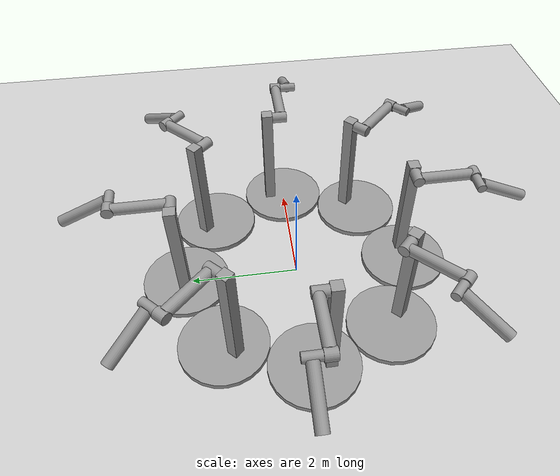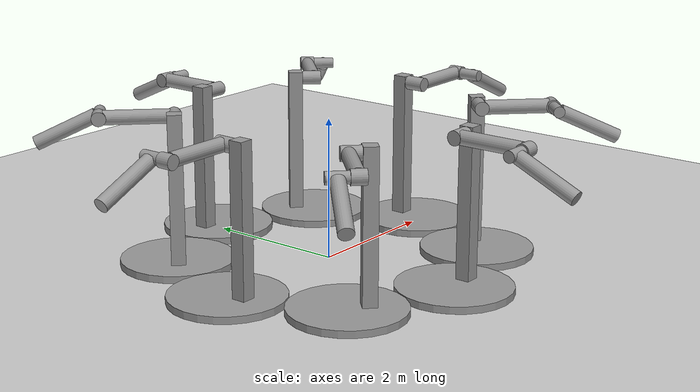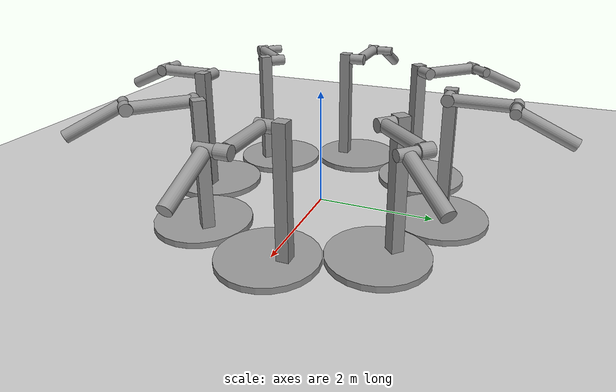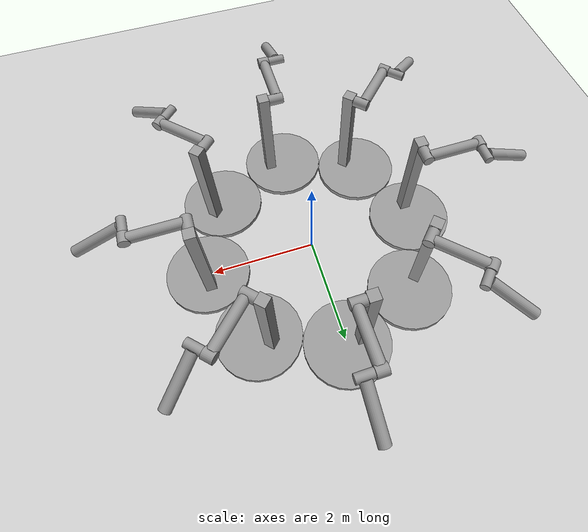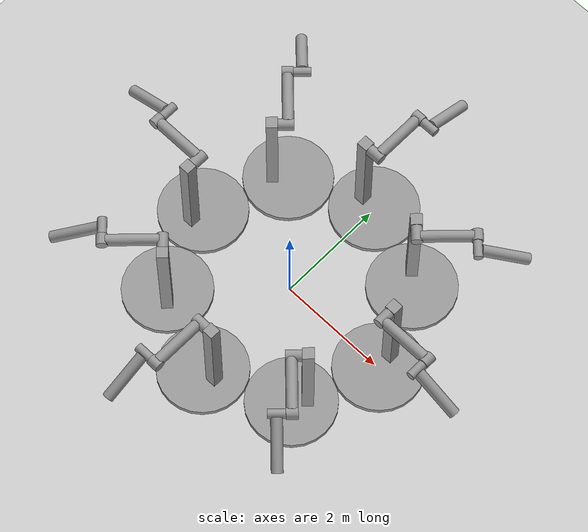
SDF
<sdf version="1.3">
 <world name="default">
  <physics type="simbody">
   <gravity>0.000000 0.000000 -9.800000</gravity>
   <update_rate>1000.000000</update_rate>
   <ode>
    <solver><dt>0.005000</dt><type>quick</type><iters>50</iters><sor>1.300000</sor></solver>
    <constraints>
     <cfm>0.000000</cfm>
     <erp>0.200000</erp>
     <contact_max_correcting_vel>100.000000</contact_max_correcting_vel>
     <contact_surface_layer>0.001000</contact_surface_layer>
    </constraints>
   </ode>
   <simbody><dt>0.005000</dt></simbody>
  </physics>
  <light name="sun" type="directional">
   <pose>0.000000 0.000000 10.000000 0.000000 0.000000 0.000000</pose>
   <diffuse>0.800000 0.800000 0.800000 1.000000</diffuse>
   <specular>0.100000 0.100000 0.100000 1.000000</specular>
   <attenuation>
    <range>1000.000000</range>
    <constant>0.900000</constant>
    <linear>0.010000</linear>
    <quadratic>0.001000</quadratic>
   </attenuation>
   <direction>-0.500000 0.500000 -1.000000</direction>
  </light>
  <model name="ground_plane">
   <static>1</static>
   <link name="link">
    <collision name="collision">
     <pose>0 0 1.75 0 0 0</pose>
     <geometry><sphere><radius>1.5</radius></sphere></geometry>
     <surface><friction><ode><mu>100.000000</mu><mu2>50.000000</mu2></ode></friction></surface>
    </collision>
    <collision name="collision">
     <geometry>
      <plane><normal>0.000000 0.000000 1.000000</normal><size>100.000000 100.000000</size></plane>
     </geometry>
     <surface><friction><ode><mu>100.000000</mu><mu2>50.000000</mu2></ode></friction></surface>
    </collision>
    <visual name="visual">
     <cast_shadows>0</cast_shadows>
     <geometry>
      <plane><normal>0.000000 0.000000 1.000000</normal><size>100.000000 100.000000</size></plane>
     </geometry>
     <material>
      <script><uri>file://media/materials/scripts/gazebo.material</uri><name>Gazebo/Grey</name></script>
     </material>
    </visual>
    <velocity_decay><linear>0.000000</linear><angular>0.000000</angular></velocity_decay>
   </link>
  </model>
  <model name="pendulum_0deg">
   <link name="base">
    <inertial>
     <mass>100.000000</mass>
     <inertia>
      <ixx>1.000000</ixx>
      <ixy>0.000000</ixy>
      <ixz>0.000000</ixz>
      <iyy>1.000000</iyy>
      <iyz>0.000000</iyz>
      <izz>1.000000</izz>
     </inertia>
    </inertial>
    <visual name="vis_plate_on_ground">
     <pose>0.000000 0.000000 0.050000 0.000000 0.000000 0.000000</pose>
     <geometry><cylinder><radius>0.800000</radius><length>0.100000</length></cylinder></geometry>
     <material>
      <script><uri>file://media/materials/scripts/gazebo.material</uri><name>Gazebo/Grey</name></script>
     </material>
    </visual>
    <visual name="vis_pole">
     <pose>-0.275000 0.000000 1.100000 0.000000 0.000000 0.000000</pose>
     <geometry><box><size>0.200000 0.200000 2.200000</size></box></geometry>
     <material>
      <script><uri>file://media/materials/scripts/gazebo.material</uri><name>Gazebo/Grey</name></script>
     </material>
    </visual>
    <collision name="col_plate_on_ground">
     <pose>0.000000 0.000000 0.050000 0.000000 0.000000 0.000000</pose>
     <geometry><cylinder><radius>0.800000</radius><length>0.100000</length></cylinder></geometry>
    </collision>
    <collision name="col_pole">
     <pose>-0.275000 0.000000 1.100000 0.000000 0.000000 0.000000</pose>
     <geometry><box><size>0.200000 0.200000 2.200000</size></box></geometry>
    </collision>
    <velocity_decay><linear>0.000000</linear><angular>0.000000</angular></velocity_decay>
   </link>
   <link name="upper_link">
    <pose>0.000000 0.000000 2.100000 -1.570800 0.000000 0.000000</pose>
    <inertial>
     <pose>0.000000 0.000000 0.500000 0.000000 0.000000 0.000000</pose>
     <inertia>
      <ixx>1.000000</ixx>
      <ixy>0.000000</ixy>
      <ixz>0.000000</ixz>
      <iyy>1.000000</iyy>
      <iyz>0.000000</iyz>
      <izz>1.000000</izz>
     </inertia>
     <mass>1.000000</mass>
    </inertial>
    <visual name="vis_upper_joint">
     <pose>-0.050000 0.000000 0.000000 -3.141592 1.570793 -3.141592</pose>
     <geometry><cylinder><radius>0.100000</radius><length>0.300000</length></cylinder></geometry>
     <material>
      <script><uri>file://media/materials/scripts/gazebo.material</uri><name>Gazebo/Grey</name></script>
     </material>
    </visual>
    <visual name="vis_lower_joint">
     <pose>0.000000 0.000000 1.000000 -3.141592 1.570793 -3.141592</pose>
     <geometry><cylinder><radius>0.100000</radius><length>0.200000</length></cylinder></geometry>
     <material>
      <script><uri>file://media/materials/scripts/gazebo.material</uri><name>Gazebo/Grey</name></script>
     </material>
    </visual>
    <visual name="vis_cylinder">
     <pose>0.000000 0.000000 0.500000 0.000000 0.000000 0.000000</pose>
     <geometry><cylinder><radius>0.100000</radius><length>0.900000</length></cylinder></geometry>
     <material>
      <script><uri>file://media/materials/scripts/gazebo.material</uri><name>Gazebo/Grey</name></script>
     </material>
    </visual>
    <collision name="col_upper_joint">
     <pose>-0.050000 0.000000 0.000000 -3.141592 1.570793 -3.141592</pose>
     <geometry><cylinder><radius>0.100000</radius><length>0.300000</length></cylinder></geometry>
    </collision>
    <collision name="col_lower_joint">
     <pose>0.000000 0.000000 1.000000 -3.141592 1.570793 -3.141592</pose>
     <geometry><cylinder><radius>0.100000</radius><length>0.200000</length></cylinder></geometry>
    </collision>
    <collision name="col_cylinder">
     <pose>0.000000 0.000000 0.500000 0.000000 0.000000 0.000000</pose>
     <geometry><cylinder><radius>0.100000</radius><length>0.900000</length></cylinder></geometry>
    </collision>
    <velocity_decay><linear>0.000000</linear><angular>0.000000</angular></velocity_decay>
   </link>
   <link name="lower_link">
    <pose>0.250000 1.000000 2.100000 -2.000000 0.000000 0.000000</pose>
    <inertial>
     <pose>0.000000 0.000000 0.500000 0.000000 0.000000 0.000000</pose>
     <inertia>
      <ixx>1.000000</ixx>
      <ixy>0.000000</ixy>
      <ixz>0.000000</ixz>
      <iyy>1.000000</iyy>
      <iyz>0.000000</iyz>
      <izz>1.000000</izz>
     </inertia>
     <mass>1.000000</mass>
    </inertial>
    <visual name="vis_lower_joint">
     <pose>0.000000 0.000000 0.000000 -3.141592 1.570793 -3.141592</pose>
     <geometry><cylinder><radius>0.080000</radius><length>0.300000</length></cylinder></geometry>
     <material>
      <script><uri>file://media/materials/scripts/gazebo.material</uri><name>Gazebo/Grey</name></script>
     </material>
    </visual>
    <visual name="vis_cylinder">
     <pose>0.000000 0.000000 0.500000 0.000000 0.000000 0.000000</pose>
     <geometry><cylinder><radius>0.100000</radius><length>0.900000</length></cylinder></geometry>
     <material>
      <script><uri>file://media/materials/scripts/gazebo.material</uri><name>Gazebo/Grey</name></script>
     </material>
    </visual>
    <collision name="col_lower_joint">
     <pose>0.000000 0.000000 0.000000 -3.141592 1.570793 -3.141592</pose>
     <geometry><cylinder><radius>0.080000</radius><length>0.300000</length></cylinder></geometry>
    </collision>
    <collision name="col_cylinder">
     <pose>0.000000 0.000000 0.500000 0.000000 0.000000 0.000000</pose>
     <geometry><cylinder><radius>0.100000</radius><length>0.900000</length></cylinder></geometry>
    </collision>
    <velocity_decay><linear>0.000000</linear><angular>0.000000</angular></velocity_decay>
   </link>
   <joint name="upper_joint" type="revolute">
    <parent>base</parent>
    <child>upper_link</child>
    <axis>
     <xyz>1.000000 0.000000 0.000000</xyz>
     <limit><lower>-10000000000000000.000000</lower><upper>10000000000000000.000000</upper></limit>
    </axis>
   </joint>
   <joint name="lower_joint" type="revolute">
    <parent>upper_link</parent>
    <child>lower_link</child>
    <axis>
     <xyz>1.000000 0.000000 0.000000</xyz>
     <limit><lower>-10000000000000000.000000</lower><upper>10000000000000000.000000</upper></limit>
    </axis>
   </joint>
   <pose>0.000000 2.100000 0.000000 0.000000 0.000000 0.000000</pose>
   <static>0</static>
  </model>
  <model name="pendulum_180deg">
   <link name="base">
    <inertial>
     <mass>100.000000</mass>
     <inertia>
      <ixx>1.000000</ixx>
      <ixy>0.000000</ixy>
      <ixz>0.000000</ixz>
      <iyy>1.000000</iyy>
      <iyz>0.000000</iyz>
      <izz>1.000000</izz>
     </inertia>
    </inertial>
    <visual name="vis_plate_on_ground">
     <pose>0.000000 0.000000 0.050000 0.000000 0.000000 0.000000</pose>
     <geometry><cylinder><radius>0.800000</radius><length>0.100000</length></cylinder></geometry>
     <material>
      <script><uri>file://media/materials/scripts/gazebo.material</uri><name>Gazebo/Grey</name></script>
     </material>
    </visual>
    <visual name="vis_pole">
     <pose>-0.275000 0.000000 1.100000 0.000000 0.000000 0.000000</pose>
     <geometry><box><size>0.200000 0.200000 2.200000</size></box></geometry>
     <material>
      <script><uri>file://media/materials/scripts/gazebo.material</uri><name>Gazebo/Grey</name></script>
     </material>
    </visual>
    <collision name="col_plate_on_ground">
     <pose>0.000000 0.000000 0.050000 0.000000 0.000000 0.000000</pose>
     <geometry><cylinder><radius>0.800000</radius><length>0.100000</length></cylinder></geometry>
    </collision>
    <collision name="col_pole">
     <pose>-0.275000 0.000000 1.100000 0.000000 0.000000 0.000000</pose>
     <geometry><box><size>0.200000 0.200000 2.200000</size></box></geometry>
    </collision>
    <velocity_decay><linear>0.000000</linear><angular>0.000000</angular></velocity_decay>
   </link>
   <link name="upper_link">
    <pose>0.000000 0.000000 2.100000 -1.570800 0.000000 0.000000</pose>
    <inertial>
     <pose>0.000000 0.000000 0.500000 0.000000 0.000000 0.000000</pose>
     <inertia>
      <ixx>1.000000</ixx>
      <ixy>0.000000</ixy>
      <ixz>0.000000</ixz>
      <iyy>1.000000</iyy>
      <iyz>0.000000</iyz>
      <izz>1.000000</izz>
     </inertia>
     <mass>1.000000</mass>
    </inertial>
    <visual name="vis_upper_joint">
     <pose>-0.050000 0.000000 0.000000 -3.141592 1.570793 -3.141592</pose>
     <geometry><cylinder><radius>0.100000</radius><length>0.300000</length></cylinder></geometry>
     <material>
      <script><uri>file://media/materials/scripts/gazebo.material</uri><name>Gazebo/Grey</name></script>
     </material>
    </visual>
    <visual name="vis_lower_joint">
     <pose>0.000000 0.000000 1.000000 -3.141592 1.570793 -3.141592</pose>
     <geometry><cylinder><radius>0.100000</radius><length>0.200000</length></cylinder></geometry>
     <material>
      <script><uri>file://media/materials/scripts/gazebo.material</uri><name>Gazebo/Grey</name></script>
     </material>
    </visual>
    <visual name="vis_cylinder">
     <pose>0.000000 0.000000 0.500000 0.000000 0.000000 0.000000</pose>
     <geometry><cylinder><radius>0.100000</radius><length>0.900000</length></cylinder></geometry>
     <material>
      <script><uri>file://media/materials/scripts/gazebo.material</uri><name>Gazebo/Grey</name></script>
     </material>
    </visual>
    <collision name="col_upper_joint">
     <pose>-0.050000 0.000000 0.000000 -3.141592 1.570793 -3.141592</pose>
     <geometry><cylinder><radius>0.100000</radius><length>0.300000</length></cylinder></geometry>
    </collision>
    <collision name="col_lower_joint">
     <pose>0.000000 0.000000 1.000000 -3.141592 1.570793 -3.141592</pose>
     <geometry><cylinder><radius>0.100000</radius><length>0.200000</length></cylinder></geometry>
    </collision>
    <collision name="col_cylinder">
     <pose>0.000000 0.000000 0.500000 0.000000 0.000000 0.000000</pose>
     <geometry><cylinder><radius>0.100000</radius><length>0.900000</length></cylinder></geometry>
    </collision>
    <velocity_decay><linear>0.000000</linear><angular>0.000000</angular></velocity_decay>
   </link>
   <link name="lower_link">
    <pose>0.250000 1.000000 2.100000 -2.000000 0.000000 0.000000</pose>
    <inertial>
     <pose>0.000000 0.000000 0.500000 0.000000 0.000000 0.000000</pose>
     <inertia>
      <ixx>1.000000</ixx>
      <ixy>0.000000</ixy>
      <ixz>0.000000</ixz>
      <iyy>1.000000</iyy>
      <iyz>0.000000</iyz>
      <izz>1.000000</izz>
     </inertia>
     <mass>1.000000</mass>
    </inertial>
    <visual name="vis_lower_joint">
     <pose>0.000000 0.000000 0.000000 -3.141592 1.570793 -3.141592</pose>
     <geometry><cylinder><radius>0.080000</radius><length>0.300000</length></cylinder></geometry>
     <material>
      <script><uri>file://media/materials/scripts/gazebo.material</uri><name>Gazebo/Grey</name></script>
     </material>
    </visual>
    <visual name="vis_cylinder">
     <pose>0.000000 0.000000 0.500000 0.000000 0.000000 0.000000</pose>
     <geometry><cylinder><radius>0.100000</radius><length>0.900000</length></cylinder></geometry>
     <material>
      <script><uri>file://media/materials/scripts/gazebo.material</uri><name>Gazebo/Grey</name></script>
     </material>
    </visual>
    <collision name="col_lower_joint">
     <pose>0.000000 0.000000 0.000000 -3.141592 1.570793 -3.141592</pose>
     <geometry><cylinder><radius>0.080000</radius><length>0.300000</length></cylinder></geometry>
    </collision>
    <collision name="col_cylinder">
     <pose>0.000000 0.000000 0.500000 0.000000 0.000000 0.000000</pose>
     <geometry><cylinder><radius>0.100000</radius><length>0.900000</length></cylinder></geometry>
    </collision>
    <velocity_decay><linear>0.000000</linear><angular>0.000000</angular></velocity_decay>
   </link>
   <joint name="upper_joint" type="revolute">
    <parent>base</parent>
    <child>upper_link</child>
    <axis>
     <xyz>1.000000 0.000000 0.000000</xyz>
     <limit><lower>-10000000000000000.000000</lower><upper>10000000000000000.000000</upper></limit>
    </axis>
   </joint>
   <joint name="lower_joint" type="revolute">
    <parent>upper_link</parent>
    <child>lower_link</child>
    <axis>
     <xyz>1.000000 0.000000 0.000000</xyz>
     <limit><lower>-10000000000000000.000000</lower><upper>10000000000000000.000000</upper></limit>
    </axis>
   </joint>
   <pose>0.000000 -2.100000 0.000000 0.000000 0.000000 -3.141585</pose>
   <static>0</static>
  </model>
  <model name="pendulum_90deg">
   <link name="base">
    <inertial>
     <mass>100.000000</mass>
     <inertia>
      <ixx>1.000000</ixx>
      <ixy>0.000000</ixy>
      <ixz>0.000000</ixz>
      <iyy>1.000000</iyy>
      <iyz>0.000000</iyz>
      <izz>1.000000</izz>
     </inertia>
    </inertial>
    <visual name="vis_plate_on_ground">
     <pose>0.000000 0.000000 0.050000 0.000000 0.000000 0.000000</pose>
     <geometry><cylinder><radius>0.800000</radius><length>0.100000</length></cylinder></geometry>
     <material>
      <script><uri>file://media/materials/scripts/gazebo.material</uri><name>Gazebo/Grey</name></script>
     </material>
    </visual>
    <visual name="vis_pole">
     <pose>-0.275000 0.000000 1.100000 0.000000 0.000000 0.000000</pose>
     <geometry><box><size>0.200000 0.200000 2.200000</size></box></geometry>
     <material>
      <script><uri>file://media/materials/scripts/gazebo.material</uri><name>Gazebo/Grey</name></script>
     </material>
    </visual>
    <collision name="col_plate_on_ground">
     <pose>0.000000 0.000000 0.050000 0.000000 0.000000 0.000000</pose>
     <geometry><cylinder><radius>0.800000</radius><length>0.100000</length></cylinder></geometry>
    </collision>
    <collision name="col_pole">
     <pose>-0.275000 0.000000 1.100000 0.000000 0.000000 0.000000</pose>
     <geometry><box><size>0.200000 0.200000 2.200000</size></box></geometry>
    </collision>
    <velocity_decay><linear>0.000000</linear><angular>0.000000</angular></velocity_decay>
   </link>
   <link name="upper_link">
    <pose>0.000000 0.000000 2.100000 -1.570800 0.000000 0.000000</pose>
    <inertial>
     <pose>0.000000 0.000000 0.500000 0.000000 0.000000 0.000000</pose>
     <inertia>
      <ixx>1.000000</ixx>
      <ixy>0.000000</ixy>
      <ixz>0.000000</ixz>
      <iyy>1.000000</iyy>
      <iyz>0.000000</iyz>
      <izz>1.000000</izz>
     </inertia>
     <mass>1.000000</mass>
    </inertial>
    <visual name="vis_upper_joint">
     <pose>-0.050000 0.000000 0.000000 -3.141592 1.570793 -3.141592</pose>
     <geometry><cylinder><radius>0.100000</radius><length>0.300000</length></cylinder></geometry>
     <material>
      <script><uri>file://media/materials/scripts/gazebo.material</uri><name>Gazebo/Grey</name></script>
     </material>
    </visual>
    <visual name="vis_lower_joint">
     <pose>0.000000 0.000000 1.000000 -3.141592 1.570793 -3.141592</pose>
     <geometry><cylinder><radius>0.100000</radius><length>0.200000</length></cylinder></geometry>
     <material>
      <script><uri>file://media/materials/scripts/gazebo.material</uri><name>Gazebo/Grey</name></script>
     </material>
    </visual>
    <visual name="vis_cylinder">
     <pose>0.000000 0.000000 0.500000 0.000000 0.000000 0.000000</pose>
     <geometry><cylinder><radius>0.100000</radius><length>0.900000</length></cylinder></geometry>
     <material>
      <script><uri>file://media/materials/scripts/gazebo.material</uri><name>Gazebo/Grey</name></script>
     </material>
    </visual>
    <collision name="col_upper_joint">
     <pose>-0.050000 0.000000 0.000000 -3.141592 1.570793 -3.141592</pose>
     <geometry><cylinder><radius>0.100000</radius><length>0.300000</length></cylinder></geometry>
    </collision>
    <collision name="col_lower_joint">
     <pose>0.000000 0.000000 1.000000 -3.141592 1.570793 -3.141592</pose>
     <geometry><cylinder><radius>0.100000</radius><length>0.200000</length></cylinder></geometry>
    </collision>
    <collision name="col_cylinder">
     <pose>0.000000 0.000000 0.500000 0.000000 0.000000 0.000000</pose>
     <geometry><cylinder><radius>0.100000</radius><length>0.900000</length></cylinder></geometry>
    </collision>
    <velocity_decay><linear>0.000000</linear><angular>0.000000</angular></velocity_decay>
   </link>
   <link name="lower_link">
    <pose>0.250000 1.000000 2.100000 -2.000000 0.000000 0.000000</pose>
    <inertial>
     <pose>0.000000 0.000000 0.500000 0.000000 0.000000 0.000000</pose>
     <inertia>
      <ixx>1.000000</ixx>
      <ixy>0.000000</ixy>
      <ixz>0.000000</ixz>
      <iyy>1.000000</iyy>
      <iyz>0.000000</iyz>
      <izz>1.000000</izz>
     </inertia>
     <mass>1.000000</mass>
    </inertial>
    <visual name="vis_lower_joint">
     <pose>0.000000 0.000000 0.000000 -3.141592 1.570793 -3.141592</pose>
     <geometry><cylinder><radius>0.080000</radius><length>0.300000</length></cylinder></geometry>
     <material>
      <script><uri>file://media/materials/scripts/gazebo.material</uri><name>Gazebo/Grey</name></script>
     </material>
    </visual>
    <visual name="vis_cylinder">
     <pose>0.000000 0.000000 0.500000 0.000000 0.000000 0.000000</pose>
     <geometry><cylinder><radius>0.100000</radius><length>0.900000</length></cylinder></geometry>
     <material>
      <script><uri>file://media/materials/scripts/gazebo.material</uri><name>Gazebo/Grey</name></script>
     </material>
    </visual>
    <collision name="col_lower_joint">
     <pose>0.000000 0.000000 0.000000 -3.141592 1.570793 -3.141592</pose>
     <geometry><cylinder><radius>0.080000</radius><length>0.300000</length></cylinder></geometry>
    </collision>
    <collision name="col_cylinder">
     <pose>0.000000 0.000000 0.500000 0.000000 0.000000 0.000000</pose>
     <geometry><cylinder><radius>0.100000</radius><length>0.900000</length></cylinder></geometry>
    </collision>
    <velocity_decay><linear>0.000000</linear><angular>0.000000</angular></velocity_decay>
   </link>
   <joint name="upper_joint" type="revolute">
    <parent>base</parent>
    <child>upper_link</child>
    <axis>
     <xyz>1.000000 0.000000 0.000000</xyz>
     <limit><lower>-10000000000000000.000000</lower><upper>10000000000000000.000000</upper></limit>
    </axis>
   </joint>
   <joint name="lower_joint" type="revolute">
    <parent>upper_link</parent>
    <child>lower_link</child>
    <axis>
     <xyz>1.000000 0.000000 0.000000</xyz>
     <limit><lower>-10000000000000000.000000</lower><upper>10000000000000000.000000</upper></limit>
    </axis>
   </joint>
   <pose>-2.100000 0.000000 0.000000 0.000000 0.000000 1.570800</pose>
   <static>0</static>
  </model>
  <model name="pendulum_270deg">
   <link name="base">
    <inertial>
     <mass>100.000000</mass>
     <inertia>
      <ixx>1.000000</ixx>
      <ixy>0.000000</ixy>
      <ixz>0.000000</ixz>
      <iyy>1.000000</iyy>
      <iyz>0.000000</iyz>
      <izz>1.000000</izz>
     </inertia>
    </inertial>
    <visual name="vis_plate_on_ground">
     <pose>0.000000 0.000000 0.050000 0.000000 0.000000 0.000000</pose>
     <geometry><cylinder><radius>0.800000</radius><length>0.100000</length></cylinder></geometry>
     <material>
      <script><uri>file://media/materials/scripts/gazebo.material</uri><name>Gazebo/Grey</name></script>
     </material>
    </visual>
    <visual name="vis_pole">
     <pose>-0.275000 0.000000 1.100000 0.000000 0.000000 0.000000</pose>
     <geometry><box><size>0.200000 0.200000 2.200000</size></box></geometry>
     <material>
      <script><uri>file://media/materials/scripts/gazebo.material</uri><name>Gazebo/Grey</name></script>
     </material>
    </visual>
    <collision name="col_plate_on_ground">
     <pose>0.000000 0.000000 0.050000 0.000000 0.000000 0.000000</pose>
     <geometry><cylinder><radius>0.800000</radius><length>0.100000</length></cylinder></geometry>
    </collision>
    <collision name="col_pole">
     <pose>-0.275000 0.000000 1.100000 0.000000 0.000000 0.000000</pose>
     <geometry><box><size>0.200000 0.200000 2.200000</size></box></geometry>
    </collision>
    <velocity_decay><linear>0.000000</linear><angular>0.000000</angular></velocity_decay>
   </link>
   <link name="upper_link">
    <pose>0.000000 0.000000 2.100000 -1.570800 0.000000 0.000000</pose>
    <inertial>
     <pose>0.000000 0.000000 0.500000 0.000000 0.000000 0.000000</pose>
     <inertia>
      <ixx>1.000000</ixx>
      <ixy>0.000000</ixy>
      <ixz>0.000000</ixz>
      <iyy>1.000000</iyy>
      <iyz>0.000000</iyz>
      <izz>1.000000</izz>
     </inertia>
     <mass>1.000000</mass>
    </inertial>
    <visual name="vis_upper_joint">
     <pose>-0.050000 0.000000 0.000000 -3.141592 1.570793 -3.141592</pose>
     <geometry><cylinder><radius>0.100000</radius><length>0.300000</length></cylinder></geometry>
     <material>
      <script><uri>file://media/materials/scripts/gazebo.material</uri><name>Gazebo/Grey</name></script>
     </material>
    </visual>
    <visual name="vis_lower_joint">
     <pose>0.000000 0.000000 1.000000 -3.141592 1.570793 -3.141592</pose>
     <geometry><cylinder><radius>0.100000</radius><length>0.200000</length></cylinder></geometry>
     <material>
      <script><uri>file://media/materials/scripts/gazebo.material</uri><name>Gazebo/Grey</name></script>
     </material>
    </visual>
    <visual name="vis_cylinder">
     <pose>0.000000 0.000000 0.500000 0.000000 0.000000 0.000000</pose>
     <geometry><cylinder><radius>0.100000</radius><length>0.900000</length></cylinder></geometry>
     <material>
      <script><uri>file://media/materials/scripts/gazebo.material</uri><name>Gazebo/Grey</name></script>
     </material>
    </visual>
    <collision name="col_upper_joint">
     <pose>-0.050000 0.000000 0.000000 -3.141592 1.570793 -3.141592</pose>
     <geometry><cylinder><radius>0.100000</radius><length>0.300000</length></cylinder></geometry>
    </collision>
    <collision name="col_lower_joint">
     <pose>0.000000 0.000000 1.000000 -3.141592 1.570793 -3.141592</pose>
     <geometry><cylinder><radius>0.100000</radius><length>0.200000</length></cylinder></geometry>
    </collision>
    <collision name="col_cylinder">
     <pose>0.000000 0.000000 0.500000 0.000000 0.000000 0.000000</pose>
     <geometry><cylinder><radius>0.100000</radius><length>0.900000</length></cylinder></geometry>
    </collision>
    <velocity_decay><linear>0.000000</linear><angular>0.000000</angular></velocity_decay>
   </link>
   <link name="lower_link">
    <pose>0.250000 1.000000 2.100000 -2.000000 0.000000 0.000000</pose>
    <inertial>
     <pose>0.000000 0.000000 0.500000 0.000000 0.000000 0.000000</pose>
     <inertia>
      <ixx>1.000000</ixx>
      <ixy>0.000000</ixy>
      <ixz>0.000000</ixz>
      <iyy>1.000000</iyy>
      <iyz>0.000000</iyz>
      <izz>1.000000</izz>
     </inertia>
     <mass>1.000000</mass>
    </inertial>
    <visual name="vis_lower_joint">
     <pose>0.000000 0.000000 0.000000 -3.141592 1.570793 -3.141592</pose>
     <geometry><cylinder><radius>0.080000</radius><length>0.300000</length></cylinder></geometry>
     <material>
      <script><uri>file://media/materials/scripts/gazebo.material</uri><name>Gazebo/Grey</name></script>
     </material>
    </visual>
    <visual name="vis_cylinder">
     <pose>0.000000 0.000000 0.500000 0.000000 0.000000 0.000000</pose>
     <geometry><cylinder><radius>0.100000</radius><length>0.900000</length></cylinder></geometry>
     <material>
      <script><uri>file://media/materials/scripts/gazebo.material</uri><name>Gazebo/Grey</name></script>
     </material>
    </visual>
    <collision name="col_lower_joint">
     <pose>0.000000 0.000000 0.000000 -3.141592 1.570793 -3.141592</pose>
     <geometry><cylinder><radius>0.080000</radius><length>0.300000</length></cylinder></geometry>
    </collision>
    <collision name="col_cylinder">
     <pose>0.000000 0.000000 0.500000 0.000000 0.000000 0.000000</pose>
     <geometry><cylinder><radius>0.100000</radius><length>0.900000</length></cylinder></geometry>
    </collision>
    <velocity_decay><linear>0.000000</linear><angular>0.000000</angular></velocity_decay>
   </link>
   <joint name="upper_joint" type="revolute">
    <parent>base</parent>
    <child>upper_link</child>
    <axis>
     <xyz>1.000000 0.000000 0.000000</xyz>
     <limit><lower>-10000000000000000.000000</lower><upper>10000000000000000.000000</upper></limit>
    </axis>
   </joint>
   <joint name="lower_joint" type="revolute">
    <parent>upper_link</parent>
    <child>lower_link</child>
    <axis>
     <xyz>1.000000 0.000000 0.000000</xyz>
     <limit><lower>-10000000000000000.000000</lower><upper>10000000000000000.000000</upper></limit>
    </axis>
   </joint>
   <pose>2.100000 0.000000 0.000000 0.000000 0.000000 -1.570800</pose>
   <static>0</static>
  </model>
  <model name="pendulum_315deg">
   <link name="base">
    <inertial>
     <mass>100.000000</mass>
     <inertia>
      <ixx>1.000000</ixx>
      <ixy>0.000000</ixy>
      <ixz>0.000000</ixz>
      <iyy>1.000000</iyy>
      <iyz>0.000000</iyz>
      <izz>1.000000</izz>
     </inertia>
    </inertial>
    <visual name="vis_plate_on_ground">
     <pose>0.000000 0.000000 0.050000 0.000000 0.000000 0.000000</pose>
     <geometry><cylinder><radius>0.800000</radius><length>0.100000</length></cylinder></geometry>
     <material>
      <script><uri>file://media/materials/scripts/gazebo.material</uri><name>Gazebo/Grey</name></script>
     </material>
    </visual>
    <visual name="vis_pole">
     <pose>-0.275000 0.000000 1.100000 0.000000 0.000000 0.000000</pose>
     <geometry><box><size>0.200000 0.200000 2.200000</size></box></geometry>
     <material>
      <script><uri>file://media/materials/scripts/gazebo.material</uri><name>Gazebo/Grey</name></script>
     </material>
    </visual>
    <collision name="col_plate_on_ground">
     <pose>0.000000 0.000000 0.050000 0.000000 0.000000 0.000000</pose>
     <geometry><cylinder><radius>0.800000</radius><length>0.100000</length></cylinder></geometry>
    </collision>
    <collision name="col_pole">
     <pose>-0.275000 0.000000 1.100000 0.000000 0.000000 0.000000</pose>
     <geometry><box><size>0.200000 0.200000 2.200000</size></box></geometry>
    </collision>
    <velocity_decay><linear>0.000000</linear><angular>0.000000</angular></velocity_decay>
   </link>
   <link name="upper_link">
    <pose>0.000000 0.000000 2.100000 -1.570800 0.000000 0.000000</pose>
    <inertial>
     <pose>0.000000 0.000000 0.500000 0.000000 0.000000 0.000000</pose>
     <inertia>
      <ixx>1.000000</ixx>
      <ixy>0.000000</ixy>
      <ixz>0.000000</ixz>
      <iyy>1.000000</iyy>
      <iyz>0.000000</iyz>
      <izz>1.000000</izz>
     </inertia>
     <mass>1.000000</mass>
    </inertial>
    <visual name="vis_upper_joint">
     <pose>-0.050000 0.000000 0.000000 -3.141592 1.570793 -3.141592</pose>
     <geometry><cylinder><radius>0.100000</radius><length>0.300000</length></cylinder></geometry>
     <material>
      <script><uri>file://media/materials/scripts/gazebo.material</uri><name>Gazebo/Grey</name></script>
     </material>
    </visual>
    <visual name="vis_lower_joint">
     <pose>0.000000 0.000000 1.000000 -3.141592 1.570793 -3.141592</pose>
     <geometry><cylinder><radius>0.100000</radius><length>0.200000</length></cylinder></geometry>
     <material>
      <script><uri>file://media/materials/scripts/gazebo.material</uri><name>Gazebo/Grey</name></script>
     </material>
    </visual>
    <visual name="vis_cylinder">
     <pose>0.000000 0.000000 0.500000 0.000000 0.000000 0.000000</pose>
     <geometry><cylinder><radius>0.100000</radius><length>0.900000</length></cylinder></geometry>
     <material>
      <script><uri>file://media/materials/scripts/gazebo.material</uri><name>Gazebo/Grey</name></script>
     </material>
    </visual>
    <collision name="col_upper_joint">
     <pose>-0.050000 0.000000 0.000000 -3.141592 1.570793 -3.141592</pose>
     <geometry><cylinder><radius>0.100000</radius><length>0.300000</length></cylinder></geometry>
    </collision>
    <collision name="col_lower_joint">
     <pose>0.000000 0.000000 1.000000 -3.141592 1.570793 -3.141592</pose>
     <geometry><cylinder><radius>0.100000</radius><length>0.200000</length></cylinder></geometry>
    </collision>
    <collision name="col_cylinder">
     <pose>0.000000 0.000000 0.500000 0.000000 0.000000 0.000000</pose>
     <geometry><cylinder><radius>0.100000</radius><length>0.900000</length></cylinder></geometry>
    </collision>
    <velocity_decay><linear>0.000000</linear><angular>0.000000</angular></velocity_decay>
   </link>
   <link name="lower_link">
    <pose>0.250000 1.000000 2.100000 -2.000000 0.000000 0.000000</pose>
    <inertial>
     <pose>0.000000 0.000000 0.500000 0.000000 0.000000 0.000000</pose>
     <inertia>
      <ixx>1.000000</ixx>
      <ixy>0.000000</ixy>
      <ixz>0.000000</ixz>
      <iyy>1.000000</iyy>
      <iyz>0.000000</iyz>
      <izz>1.000000</izz>
     </inertia>
     <mass>1.000000</mass>
    </inertial>
    <visual name="vis_lower_joint">
     <pose>0.000000 0.000000 0.000000 -3.141592 1.570793 -3.141592</pose>
     <geometry><cylinder><radius>0.080000</radius><length>0.300000</length></cylinder></geometry>
     <material>
      <script><uri>file://media/materials/scripts/gazebo.material</uri><name>Gazebo/Grey</name></script>
     </material>
    </visual>
    <visual name="vis_cylinder">
     <pose>0.000000 0.000000 0.500000 0.000000 0.000000 0.000000</pose>
     <geometry><cylinder><radius>0.100000</radius><length>0.900000</length></cylinder></geometry>
     <material>
      <script><uri>file://media/materials/scripts/gazebo.material</uri><name>Gazebo/Grey</name></script>
     </material>
    </visual>
    <collision name="col_lower_joint">
     <pose>0.000000 0.000000 0.000000 -3.141592 1.570793 -3.141592</pose>
     <geometry><cylinder><radius>0.080000</radius><length>0.300000</length></cylinder></geometry>
    </collision>
    <collision name="col_cylinder">
     <pose>0.000000 0.000000 0.500000 0.000000 0.000000 0.000000</pose>
     <geometry><cylinder><radius>0.100000</radius><length>0.900000</length></cylinder></geometry>
    </collision>
    <velocity_decay><linear>0.000000</linear><angular>0.000000</angular></velocity_decay>
   </link>
   <joint name="upper_joint" type="revolute">
    <parent>base</parent>
    <child>upper_link</child>
    <axis>
     <xyz>1.000000 0.000000 0.000000</xyz>
     <limit><lower>-10000000000000000.000000</lower><upper>10000000000000000.000000</upper></limit>
    </axis>
   </joint>
   <joint name="lower_joint" type="revolute">
    <parent>upper_link</parent>
    <child>lower_link</child>
    <axis>
     <xyz>1.000000 0.000000 0.000000</xyz>
     <limit><lower>-10000000000000000.000000</lower><upper>10000000000000000.000000</upper></limit>
    </axis>
   </joint>
   <pose>1.480000 1.480000 0.000000 0.000000 0.000000 -0.785400</pose>
   <static>0</static>
  </model>
  <model name="pendulum_225deg">
   <link name="base">
    <inertial>
     <mass>100.000000</mass>
     <inertia>
      <ixx>1.000000</ixx>
      <ixy>0.000000</ixy>
      <ixz>0.000000</ixz>
      <iyy>1.000000</iyy>
      <iyz>0.000000</iyz>
      <izz>1.000000</izz>
     </inertia>
    </inertial>
    <visual name="vis_plate_on_ground">
     <pose>0.000000 0.000000 0.050000 0.000000 0.000000 0.000000</pose>
     <geometry><cylinder><radius>0.800000</radius><length>0.100000</length></cylinder></geometry>
     <material>
      <script><uri>file://media/materials/scripts/gazebo.material</uri><name>Gazebo/Grey</name></script>
     </material>
    </visual>
    <visual name="vis_pole">
     <pose>-0.275000 0.000000 1.100000 0.000000 0.000000 0.000000</pose>
     <geometry><box><size>0.200000 0.200000 2.200000</size></box></geometry>
     <material>
      <script><uri>file://media/materials/scripts/gazebo.material</uri><name>Gazebo/Grey</name></script>
     </material>
    </visual>
    <collision name="col_plate_on_ground">
     <pose>0.000000 0.000000 0.050000 0.000000 0.000000 0.000000</pose>
     <geometry><cylinder><radius>0.800000</radius><length>0.100000</length></cylinder></geometry>
    </collision>
    <collision name="col_pole">
     <pose>-0.275000 0.000000 1.100000 0.000000 0.000000 0.000000</pose>
     <geometry><box><size>0.200000 0.200000 2.200000</size></box></geometry>
    </collision>
    <velocity_decay><linear>0.000000</linear><angular>0.000000</angular></velocity_decay>
   </link>
   <link name="upper_link">
    <pose>0.000000 0.000000 2.100000 -1.570800 0.000000 0.000000</pose>
    <inertial>
     <pose>0.000000 0.000000 0.500000 0.000000 0.000000 0.000000</pose>
     <inertia>
      <ixx>1.000000</ixx>
      <ixy>0.000000</ixy>
      <ixz>0.000000</ixz>
      <iyy>1.000000</iyy>
      <iyz>0.000000</iyz>
      <izz>1.000000</izz>
     </inertia>
     <mass>1.000000</mass>
    </inertial>
    <visual name="vis_upper_joint">
     <pose>-0.050000 0.000000 0.000000 -3.141592 1.570793 -3.141592</pose>
     <geometry><cylinder><radius>0.100000</radius><length>0.300000</length></cylinder></geometry>
     <material>
      <script><uri>file://media/materials/scripts/gazebo.material</uri><name>Gazebo/Grey</name></script>
     </material>
    </visual>
    <visual name="vis_lower_joint">
     <pose>0.000000 0.000000 1.000000 -3.141592 1.570793 -3.141592</pose>
     <geometry><cylinder><radius>0.100000</radius><length>0.200000</length></cylinder></geometry>
     <material>
      <script><uri>file://media/materials/scripts/gazebo.material</uri><name>Gazebo/Grey</name></script>
     </material>
    </visual>
    <visual name="vis_cylinder">
     <pose>0.000000 0.000000 0.500000 0.000000 0.000000 0.000000</pose>
     <geometry><cylinder><radius>0.100000</radius><length>0.900000</length></cylinder></geometry>
     <material>
      <script><uri>file://media/materials/scripts/gazebo.material</uri><name>Gazebo/Grey</name></script>
     </material>
    </visual>
    <collision name="col_upper_joint">
     <pose>-0.050000 0.000000 0.000000 -3.141592 1.570793 -3.141592</pose>
     <geometry><cylinder><radius>0.100000</radius><length>0.300000</length></cylinder></geometry>
    </collision>
    <collision name="col_lower_joint">
     <pose>0.000000 0.000000 1.000000 -3.141592 1.570793 -3.141592</pose>
     <geometry><cylinder><radius>0.100000</radius><length>0.200000</length></cylinder></geometry>
    </collision>
    <collision name="col_cylinder">
     <pose>0.000000 0.000000 0.500000 0.000000 0.000000 0.000000</pose>
     <geometry><cylinder><radius>0.100000</radius><length>0.900000</length></cylinder></geometry>
    </collision>
    <velocity_decay><linear>0.000000</linear><angular>0.000000</angular></velocity_decay>
   </link>
   <link name="lower_link">
    <pose>0.250000 1.000000 2.100000 -2.000000 0.000000 0.000000</pose>
    <inertial>
     <pose>0.000000 0.000000 0.500000 0.000000 0.000000 0.000000</pose>
     <inertia>
      <ixx>1.000000</ixx>
      <ixy>0.000000</ixy>
      <ixz>0.000000</ixz>
      <iyy>1.000000</iyy>
      <iyz>0.000000</iyz>
      <izz>1.000000</izz>
     </inertia>
     <mass>1.000000</mass>
    </inertial>
    <visual name="vis_lower_joint">
     <pose>0.000000 0.000000 0.000000 -3.141592 1.570793 -3.141592</pose>
     <geometry><cylinder><radius>0.080000</radius><length>0.300000</length></cylinder></geometry>
     <material>
      <script><uri>file://media/materials/scripts/gazebo.material</uri><name>Gazebo/Grey</name></script>
     </material>
    </visual>
    <visual name="vis_cylinder">
     <pose>0.000000 0.000000 0.500000 0.000000 0.000000 0.000000</pose>
     <geometry><cylinder><radius>0.100000</radius><length>0.900000</length></cylinder></geometry>
     <material>
      <script><uri>file://media/materials/scripts/gazebo.material</uri><name>Gazebo/Grey</name></script>
     </material>
    </visual>
    <collision name="col_lower_joint">
     <pose>0.000000 0.000000 0.000000 -3.141592 1.570793 -3.141592</pose>
     <geometry><cylinder><radius>0.080000</radius><length>0.300000</length></cylinder></geometry>
    </collision>
    <collision name="col_cylinder">
     <pose>0.000000 0.000000 0.500000 0.000000 0.000000 0.000000</pose>
     <geometry><cylinder><radius>0.100000</radius><length>0.900000</length></cylinder></geometry>
    </collision>
    <velocity_decay><linear>0.000000</linear><angular>0.000000</angular></velocity_decay>
   </link>
   <joint name="upper_joint" type="revolute">
    <parent>base</parent>
    <child>upper_link</child>
    <axis>
     <xyz>1.000000 0.000000 0.000000</xyz>
     <limit><lower>-10000000000000000.000000</lower><upper>10000000000000000.000000</upper></limit>
    </axis>
   </joint>
   <joint name="lower_joint" type="revolute">
    <parent>upper_link</parent>
    <child>lower_link</child>
    <axis>
     <xyz>1.000000 0.000000 0.000000</xyz>
     <limit><lower>-10000000000000000.000000</lower><upper>10000000000000000.000000</upper></limit>
    </axis>
   </joint>
   <pose>1.480000 -1.480000 0.000000 0.000000 0.000000 -2.356200</pose>
   <static>0</static>
  </model>
  <model name="pendulum_135deg">
   <link name="base">
    <inertial>
     <mass>100.000000</mass>
     <inertia>
      <ixx>1.000000</ixx>
      <ixy>0.000000</ixy>
      <ixz>0.000000</ixz>
      <iyy>1.000000</iyy>
      <iyz>0.000000</iyz>
      <izz>1.000000</izz>
     </inertia>
    </inertial>
    <visual name="vis_plate_on_ground">
     <pose>0.000000 0.000000 0.050000 0.000000 0.000000 0.000000</pose>
     <geometry><cylinder><radius>0.800000</radius><length>0.100000</length></cylinder></geometry>
     <material>
      <script><uri>file://media/materials/scripts/gazebo.material</uri><name>Gazebo/Grey</name></script>
     </material>
    </visual>
    <visual name="vis_pole">
     <pose>-0.275000 0.000000 1.100000 0.000000 0.000000 0.000000</pose>
     <geometry><box><size>0.200000 0.200000 2.200000</size></box></geometry>
     <material>
      <script><uri>file://media/materials/scripts/gazebo.material</uri><name>Gazebo/Grey</name></script>
     </material>
    </visual>
    <collision name="col_plate_on_ground">
     <pose>0.000000 0.000000 0.050000 0.000000 0.000000 0.000000</pose>
     <geometry><cylinder><radius>0.800000</radius><length>0.100000</length></cylinder></geometry>
    </collision>
    <collision name="col_pole">
     <pose>-0.275000 0.000000 1.100000 0.000000 0.000000 0.000000</pose>
     <geometry><box><size>0.200000 0.200000 2.200000</size></box></geometry>
    </collision>
    <velocity_decay><linear>0.000000</linear><angular>0.000000</angular></velocity_decay>
   </link>
   <link name="upper_link">
    <pose>0.000000 0.000000 2.100000 -1.570800 0.000000 0.000000</pose>
    <inertial>
     <pose>0.000000 0.000000 0.500000 0.000000 0.000000 0.000000</pose>
     <inertia>
      <ixx>1.000000</ixx>
      <ixy>0.000000</ixy>
      <ixz>0.000000</ixz>
      <iyy>1.000000</iyy>
      <iyz>0.000000</iyz>
      <izz>1.000000</izz>
     </inertia>
     <mass>1.000000</mass>
    </inertial>
    <visual name="vis_upper_joint">
     <pose>-0.050000 0.000000 0.000000 -3.141592 1.570793 -3.141592</pose>
     <geometry><cylinder><radius>0.100000</radius><length>0.300000</length></cylinder></geometry>
     <material>
      <script><uri>file://media/materials/scripts/gazebo.material</uri><name>Gazebo/Grey</name></script>
     </material>
    </visual>
    <visual name="vis_lower_joint">
     <pose>0.000000 0.000000 1.000000 -3.141592 1.570793 -3.141592</pose>
     <geometry><cylinder><radius>0.100000</radius><length>0.200000</length></cylinder></geometry>
     <material>
      <script><uri>file://media/materials/scripts/gazebo.material</uri><name>Gazebo/Grey</name></script>
     </material>
    </visual>
    <visual name="vis_cylinder">
     <pose>0.000000 0.000000 0.500000 0.000000 0.000000 0.000000</pose>
     <geometry><cylinder><radius>0.100000</radius><length>0.900000</length></cylinder></geometry>
     <material>
      <script><uri>file://media/materials/scripts/gazebo.material</uri><name>Gazebo/Grey</name></script>
     </material>
    </visual>
    <collision name="col_upper_joint">
     <pose>-0.050000 0.000000 0.000000 -3.141592 1.570793 -3.141592</pose>
     <geometry><cylinder><radius>0.100000</radius><length>0.300000</length></cylinder></geometry>
    </collision>
    <collision name="col_lower_joint">
     <pose>0.000000 0.000000 1.000000 -3.141592 1.570793 -3.141592</pose>
     <geometry><cylinder><radius>0.100000</radius><length>0.200000</length></cylinder></geometry>
    </collision>
    <collision name="col_cylinder">
     <pose>0.000000 0.000000 0.500000 0.000000 0.000000 0.000000</pose>
     <geometry><cylinder><radius>0.100000</radius><length>0.900000</length></cylinder></geometry>
    </collision>
    <velocity_decay><linear>0.000000</linear><angular>0.000000</angular></velocity_decay>
   </link>
   <link name="lower_link">
    <pose>0.250000 1.000000 2.100000 -2.000000 0.000000 0.000000</pose>
    <inertial>
     <pose>0.000000 0.000000 0.500000 0.000000 0.000000 0.000000</pose>
     <inertia>
      <ixx>1.000000</ixx>
      <ixy>0.000000</ixy>
      <ixz>0.000000</ixz>
      <iyy>1.000000</iyy>
      <iyz>0.000000</iyz>
      <izz>1.000000</izz>
     </inertia>
     <mass>1.000000</mass>
    </inertial>
    <visual name="vis_lower_joint">
     <pose>0.000000 0.000000 0.000000 -3.141592 1.570793 -3.141592</pose>
     <geometry><cylinder><radius>0.080000</radius><length>0.300000</length></cylinder></geometry>
     <material>
      <script><uri>file://media/materials/scripts/gazebo.material</uri><name>Gazebo/Grey</name></script>
     </material>
    </visual>
    <visual name="vis_cylinder">
     <pose>0.000000 0.000000 0.500000 0.000000 0.000000 0.000000</pose>
     <geometry><cylinder><radius>0.100000</radius><length>0.900000</length></cylinder></geometry>
     <material>
      <script><uri>file://media/materials/scripts/gazebo.material</uri><name>Gazebo/Grey</name></script>
     </material>
    </visual>
    <collision name="col_lower_joint">
     <pose>0.000000 0.000000 0.000000 -3.141592 1.570793 -3.141592</pose>
     <geometry><cylinder><radius>0.080000</radius><length>0.300000</length></cylinder></geometry>
    </collision>
    <collision name="col_cylinder">
     <pose>0.000000 0.000000 0.500000 0.000000 0.000000 0.000000</pose>
     <geometry><cylinder><radius>0.100000</radius><length>0.900000</length></cylinder></geometry>
    </collision>
    <velocity_decay><linear>0.000000</linear><angular>0.000000</angular></velocity_decay>
   </link>
   <joint name="upper_joint" type="revolute">
    <parent>base</parent>
    <child>upper_link</child>
    <axis>
     <xyz>1.000000 0.000000 0.000000</xyz>
     <limit><lower>-10000000000000000.000000</lower><upper>10000000000000000.000000</upper></limit>
    </axis>
   </joint>
   <joint name="lower_joint" type="revolute">
    <parent>upper_link</parent>
    <child>lower_link</child>
    <axis>
     <xyz>1.000000 0.000000 0.000000</xyz>
     <limit><lower>-10000000000000000.000000</lower><upper>10000000000000000.000000</upper></limit>
    </axis>
   </joint>
   <pose>-1.480000 -1.480000 0.000000 0.000000 0.000000 2.356200</pose>
   <static>0</static>
  </model>
  <model name="pendulum_45deg">
   <link name="base">
    <inertial>
     <mass>100.000000</mass>
     <inertia>
      <ixx>1.000000</ixx>
      <ixy>0.000000</ixy>
      <ixz>0.000000</ixz>
      <iyy>1.000000</iyy>
      <iyz>0.000000</iyz>
      <izz>1.000000</izz>
     </inertia>
    </inertial>
    <visual name="vis_plate_on_ground">
     <pose>0.000000 0.000000 0.050000 0.000000 0.000000 0.000000</pose>
     <geometry><cylinder><radius>0.800000</radius><length>0.100000</length></cylinder></geometry>
     <material>
      <script><uri>file://media/materials/scripts/gazebo.material</uri><name>Gazebo/Grey</name></script>
     </material>
    </visual>
    <visual name="vis_pole">
     <pose>-0.275000 0.000000 1.100000 0.000000 0.000000 0.000000</pose>
     <geometry><box><size>0.200000 0.200000 2.200000</size></box></geometry>
     <material>
      <script><uri>file://media/materials/scripts/gazebo.material</uri><name>Gazebo/Grey</name></script>
     </material>
    </visual>
    <collision name="col_plate_on_ground">
     <pose>0.000000 0.000000 0.050000 0.000000 0.000000 0.000000</pose>
     <geometry><cylinder><radius>0.800000</radius><length>0.100000</length></cylinder></geometry>
    </collision>
    <collision name="col_pole">
     <pose>-0.275000 0.000000 1.100000 0.000000 0.000000 0.000000</pose>
     <geometry><box><size>0.200000 0.200000 2.200000</size></box></geometry>
    </collision>
    <velocity_decay><linear>0.000000</linear><angular>0.000000</angular></velocity_decay>
   </link>
   <link name="upper_link">
    <pose>0.000000 0.000000 2.100000 -1.570800 0.000000 0.000000</pose>
    <inertial>
     <pose>0.000000 0.000000 0.500000 0.000000 0.000000 0.000000</pose>
     <inertia>
      <ixx>1.000000</ixx>
      <ixy>0.000000</ixy>
      <ixz>0.000000</ixz>
      <iyy>1.000000</iyy>
      <iyz>0.000000</iyz>
      <izz>1.000000</izz>
     </inertia>
     <mass>1.000000</mass>
    </inertial>
    <visual name="vis_upper_joint">
     <pose>-0.050000 0.000000 0.000000 -3.141592 1.570793 -3.141592</pose>
     <geometry><cylinder><radius>0.100000</radius><length>0.300000</length></cylinder></geometry>
     <material>
      <script><uri>file://media/materials/scripts/gazebo.material</uri><name>Gazebo/Grey</name></script>
     </material>
    </visual>
    <visual name="vis_lower_joint">
     <pose>0.000000 0.000000 1.000000 -3.141592 1.570793 -3.141592</pose>
     <geometry><cylinder><radius>0.100000</radius><length>0.200000</length></cylinder></geometry>
     <material>
      <script><uri>file://media/materials/scripts/gazebo.material</uri><name>Gazebo/Grey</name></script>
     </material>
    </visual>
    <visual name="vis_cylinder">
     <pose>0.000000 0.000000 0.500000 0.000000 0.000000 0.000000</pose>
     <geometry><cylinder><radius>0.100000</radius><length>0.900000</length></cylinder></geometry>
     <material>
      <script><uri>file://media/materials/scripts/gazebo.material</uri><name>Gazebo/Grey</name></script>
     </material>
    </visual>
    <collision name="col_upper_joint">
     <pose>-0.050000 0.000000 0.000000 -3.141592 1.570793 -3.141592</pose>
     <geometry><cylinder><radius>0.100000</radius><length>0.300000</length></cylinder></geometry>
    </collision>
    <collision name="col_lower_joint">
     <pose>0.000000 0.000000 1.000000 -3.141592 1.570793 -3.141592</pose>
     <geometry><cylinder><radius>0.100000</radius><length>0.200000</length></cylinder></geometry>
    </collision>
    <collision name="col_cylinder">
     <pose>0.000000 0.000000 0.500000 0.000000 0.000000 0.000000</pose>
     <geometry><cylinder><radius>0.100000</radius><length>0.900000</length></cylinder></geometry>
    </collision>
    <velocity_decay><linear>0.000000</linear><angular>0.000000</angular></velocity_decay>
   </link>
   <link name="lower_link">
    <pose>0.250000 1.000000 2.100000 -2.000000 0.000000 0.000000</pose>
    <inertial>
     <pose>0.000000 0.000000 0.500000 0.000000 0.000000 0.000000</pose>
     <inertia>
      <ixx>1.000000</ixx>
      <ixy>0.000000</ixy>
      <ixz>0.000000</ixz>
      <iyy>1.000000</iyy>
      <iyz>0.000000</iyz>
      <izz>1.000000</izz>
     </inertia>
     <mass>1.000000</mass>
    </inertial>
    <visual name="vis_lower_joint">
     <pose>0.000000 0.000000 0.000000 -3.141592 1.570793 -3.141592</pose>
     <geometry><cylinder><radius>0.080000</radius><length>0.300000</length></cylinder></geometry>
     <material>
      <script><uri>file://media/materials/scripts/gazebo.material</uri><name>Gazebo/Grey</name></script>
     </material>
    </visual>
    <visual name="vis_cylinder">
     <pose>0.000000 0.000000 0.500000 0.000000 0.000000 0.000000</pose>
     <geometry><cylinder><radius>0.100000</radius><length>0.900000</length></cylinder></geometry>
     <material>
      <script><uri>file://media/materials/scripts/gazebo.material</uri><name>Gazebo/Grey</name></script>
     </material>
    </visual>
    <collision name="col_lower_joint">
     <pose>0.000000 0.000000 0.000000 -3.141592 1.570793 -3.141592</pose>
     <geometry><cylinder><radius>0.080000</radius><length>0.300000</length></cylinder></geometry>
    </collision>
    <collision name="col_cylinder">
     <pose>0.000000 0.000000 0.500000 0.000000 0.000000 0.000000</pose>
     <geometry><cylinder><radius>0.100000</radius><length>0.900000</length></cylinder></geometry>
    </collision>
    <velocity_decay><linear>0.000000</linear><angular>0.000000</angular></velocity_decay>
   </link>
   <joint name="upper_joint" type="revolute">
    <parent>base</parent>
    <child>upper_link</child>
    <axis>
     <xyz>1.000000 0.000000 0.000000</xyz>
     <limit><lower>-10000000000000000.000000</lower><upper>10000000000000000.000000</upper></limit>
    </axis>
   </joint>
   <joint name="lower_joint" type="revolute">
    <parent>upper_link</parent>
    <child>lower_link</child>
    <axis>
     <xyz>1.000000 0.000000 0.000000</xyz>
     <limit><lower>-10000000000000000.000000</lower><upper>10000000000000000.000000</upper></limit>
    </axis>
   </joint>
   <pose>-1.480000 1.480000 0.000000 0.000000 0.000000 0.785400</pose>
   <static>0</static>
  </model>
  <scene>
   <ambient>0.200000 0.200000 0.200000 1.000000</ambient>
   <background>0.700000 0.700000 0.700000 1.000000</background>
   <shadows>1</shadows>
  </scene>
 </world>
</sdf>
